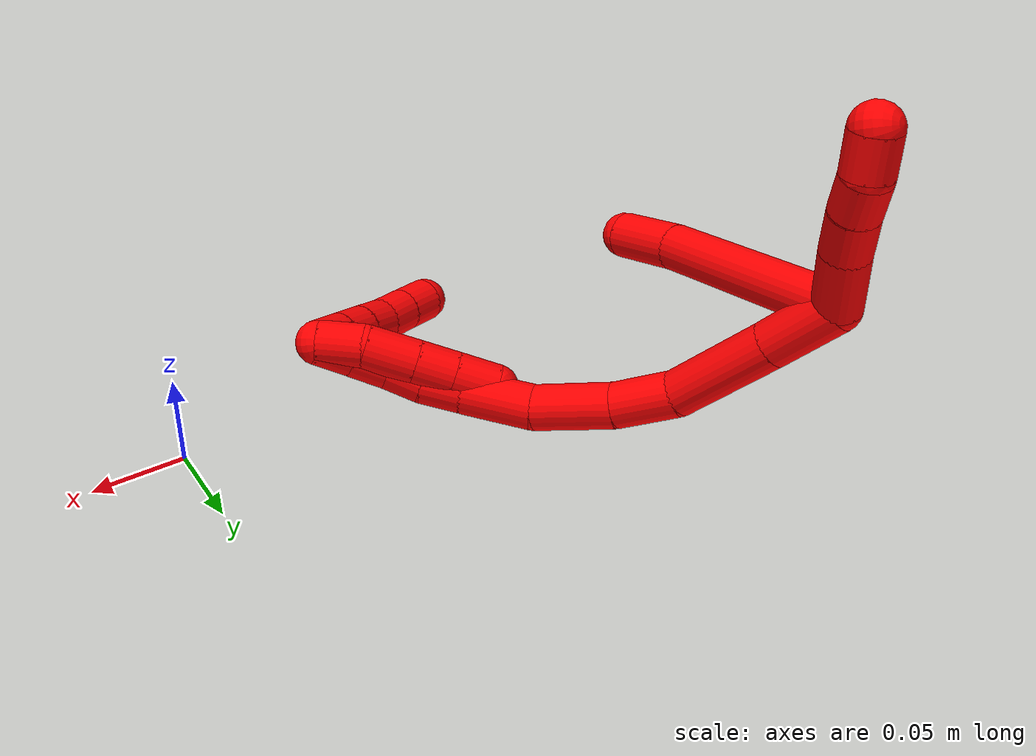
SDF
<sdf version="1.7">
 <world name="default">
  <model name="2">
   <static>0</static>
   <link name="2">
    <collision name="collision-cylinder-e_1_2_8">
     <pose>0.004361 -0.021381 -0.052006 2.75153 0.077409 0.387148</pose>
     <geometry><cylinder><radius>0.0125</radius><length>0.112796</length></cylinder></geometry>
     <surface>
      <friction><ode><mu>1.16</mu><mu2>1.16</mu2><slip1>0</slip1><slip2>0</slip2></ode></friction>
      <contact><ode><kp>1e+06</kp><kd>1</kd><max_vel>0</max_vel><min_depth>0.001</min_depth></ode></contact>
     </surface>
    </collision>
    <visual name="visual-cylinder-e_1_2_8">
     <pose>0.004361 -0.021381 -0.052006 2.75153 0.077409 0.387148</pose>
     <geometry><cylinder><radius>0.0125</radius><length>0.112796</length></cylinder></geometry>
     <material><ambient>1 0 0 1</ambient></material>
    </visual>
    <collision name="collision-cylinder-e_2_8_6">
     <pose>0.010558 -0.047526 -0.121899 2.88131 0.098828 0.722539</pose>
     <geometry><cylinder><radius>0.0125</radius><length>0.037204</length></cylinder></geometry>
     <surface>
      <friction><ode><mu>1.16</mu><mu2>1.16</mu2><slip1>0</slip1><slip2>0</slip2></ode></friction>
      <contact><ode><kp>1e+06</kp><kd>1</kd><max_vel>0</max_vel><min_depth>0.001</min_depth></ode></contact>
     </surface>
    </collision>
    <visual name="visual-cylinder-e_2_8_6">
     <pose>0.010558 -0.047526 -0.121899 2.88131 0.098828 0.722539</pose>
     <geometry><cylinder><radius>0.0125</radius><length>0.037204</length></cylinder></geometry>
     <material><ambient>1 0 0 1</ambient></material>
    </visual>
    <collision name="collision-cylinder-e_1_2_9">
     <pose>0.015246 -0.002089 0.006876 0.294984 1.1303 0.187876</pose>
     <geometry><cylinder><radius>0.0125</radius><length>0.033711</length></cylinder></geometry>
     <surface>
      <friction><ode><mu>1.16</mu><mu2>1.16</mu2><slip1>0</slip1><slip2>0</slip2></ode></friction>
      <contact><ode><kp>1e+06</kp><kd>1</kd><max_vel>0</max_vel><min_depth>0.001</min_depth></ode></contact>
     </surface>
    </collision>
    <visual name="visual-cylinder-e_1_2_9">
     <pose>0.015246 -0.002089 0.006876 0.294984 1.1303 0.187876</pose>
     <geometry><cylinder><radius>0.0125</radius><length>0.033711</length></cylinder></geometry>
     <material><ambient>1 0 0 1</ambient></material>
    </visual>
    <collision name="collision-cylinder-e_2_9_10">
     <pose>0.041023 -0.004799 0.01935 0.110389 1.07975 0.066195</pose>
     <geometry><cylinder><radius>0.0125</radius><length>0.023884</length></cylinder></geometry>
     <surface>
      <friction><ode><mu>1.16</mu><mu2>1.16</mu2><slip1>0</slip1><slip2>0</slip2></ode></friction>
      <contact><ode><kp>1e+06</kp><kd>1</kd><max_vel>0</max_vel><min_depth>0.001</min_depth></ode></contact>
     </surface>
    </collision>
    <visual name="visual-cylinder-e_2_9_10">
     <pose>0.041023 -0.004799 0.01935 0.110389 1.07975 0.066195</pose>
     <geometry><cylinder><radius>0.0125</radius><length>0.023884</length></cylinder></geometry>
     <material><ambient>1 0 0 1</ambient></material>
    </visual>
    <collision name="collision-cylinder-e_3_10_11">
     <pose>0.06033 -0.006388 0.030414 0.175394 1.00669 0.096753</pose>
     <geometry><cylinder><radius>0.0125</radius><length>0.020769</length></cylinder></geometry>
     <surface>
      <friction><ode><mu>1.16</mu><mu2>1.16</mu2><slip1>0</slip1><slip2>0</slip2></ode></friction>
      <contact><ode><kp>1e+06</kp><kd>1</kd><max_vel>0</max_vel><min_depth>0.001</min_depth></ode></contact>
     </surface>
    </collision>
    <visual name="visual-cylinder-e_3_10_11">
     <pose>0.06033 -0.006388 0.030414 0.175394 1.00669 0.096753</pose>
     <geometry><cylinder><radius>0.0125</radius><length>0.020769</length></cylinder></geometry>
     <material><ambient>1 0 0 1</ambient></material>
    </visual>
    <collision name="collision-cylinder-e_4_11_5">
     <pose>0.078482 -0.010985 0.039876 0.737313 1.04853 0.439551</pose>
     <geometry><cylinder><radius>0.0125</radius><length>0.021636</length></cylinder></geometry>
     <surface>
      <friction><ode><mu>1.16</mu><mu2>1.16</mu2><slip1>0</slip1><slip2>0</slip2></ode></friction>
      <contact><ode><kp>1e+06</kp><kd>1</kd><max_vel>0</max_vel><min_depth>0.001</min_depth></ode></contact>
     </surface>
    </collision>
    <visual name="visual-cylinder-e_4_11_5">
     <pose>0.078482 -0.010985 0.039876 0.737313 1.04853 0.439551</pose>
     <geometry><cylinder><radius>0.0125</radius><length>0.021636</length></cylinder></geometry>
     <material><ambient>1 0 0 1</ambient></material>
    </visual>
    <collision name="collision-cylinder-e_1_2_12">
     <pose>-0.006086 0.005912 -0.017508 -2.81593 -0.318137 1.54702</pose>
     <geometry><cylinder><radius>0.0125</radius><length>0.03891</length></cylinder></geometry>
     <surface>
      <friction><ode><mu>1.16</mu><mu2>1.16</mu2><slip1>0</slip1><slip2>0</slip2></ode></friction>
      <contact><ode><kp>1e+06</kp><kd>1</kd><max_vel>0</max_vel><min_depth>0.001</min_depth></ode></contact>
     </surface>
    </collision>
    <visual name="visual-cylinder-e_1_2_12">
     <pose>-0.006086 0.005912 -0.017508 -2.81593 -0.318137 1.54702</pose>
     <geometry><cylinder><radius>0.0125</radius><length>0.03891</length></cylinder></geometry>
     <material><ambient>1 0 0 1</ambient></material>
    </visual>
    <collision name="collision-cylinder-e_2_12_13">
     <pose>-0.020363 0.021116 -0.061351 -2.80239 -0.285323 1.39589</pose>
     <geometry><cylinder><radius>0.0125</radius><length>0.058208</length></cylinder></geometry>
     <surface>
      <friction><ode><mu>1.16</mu><mu2>1.16</mu2><slip1>0</slip1><slip2>0</slip2></ode></friction>
      <contact><ode><kp>1e+06</kp><kd>1</kd><max_vel>0</max_vel><min_depth>0.001</min_depth></ode></contact>
     </surface>
    </collision>
    <visual name="visual-cylinder-e_2_12_13">
     <pose>-0.020363 0.021116 -0.061351 -2.80239 -0.285323 1.39589</pose>
     <geometry><cylinder><radius>0.0125</radius><length>0.058208</length></cylinder></geometry>
     <material><ambient>1 0 0 1</ambient></material>
    </visual>
    <collision name="collision-cylinder-e_3_13_14">
     <pose>-0.027715 0.035933 -0.103881 -2.81285 0.049046 -0.293624</pose>
     <geometry><cylinder><radius>0.0125</radius><length>0.034261</length></cylinder></geometry>
     <surface>
      <friction><ode><mu>1.16</mu><mu2>1.16</mu2><slip1>0</slip1><slip2>0</slip2></ode></friction>
      <contact><ode><kp>1e+06</kp><kd>1</kd><max_vel>0</max_vel><min_depth>0.001</min_depth></ode></contact>
     </surface>
    </collision>
    <visual name="visual-cylinder-e_3_13_14">
     <pose>-0.027715 0.035933 -0.103881 -2.81285 0.049046 -0.293624</pose>
     <geometry><cylinder><radius>0.0125</radius><length>0.034261</length></cylinder></geometry>
     <material><ambient>1 0 0 1</ambient></material>
    </visual>
    <collision name="collision-cylinder-e_4_14_15">
     <pose>-0.021477 0.047975 -0.140484 -2.83247 0.246793 -1.34463</pose>
     <geometry><cylinder><radius>0.0125</radius><length>0.044189</length></cylinder></geometry>
     <surface>
      <friction><ode><mu>1.16</mu><mu2>1.16</mu2><slip1>0</slip1><slip2>0</slip2></ode></friction>
      <contact><ode><kp>1e+06</kp><kd>1</kd><max_vel>0</max_vel><min_depth>0.001</min_depth></ode></contact>
     </surface>
    </collision>
    <visual name="visual-cylinder-e_4_14_15">
     <pose>-0.021477 0.047975 -0.140484 -2.83247 0.246793 -1.34463</pose>
     <geometry><cylinder><radius>0.0125</radius><length>0.044189</length></cylinder></geometry>
     <material><ambient>1 0 0 1</ambient></material>
    </visual>
    <collision name="collision-cylinder-e_5_15_16">
     <pose>-0.006848 0.057772 -0.178195 -2.95426 0.482853 -2.41266</pose>
     <geometry><cylinder><radius>0.0125</radius><length>0.039767</length></cylinder></geometry>
     <surface>
      <friction><ode><mu>1.16</mu><mu2>1.16</mu2><slip1>0</slip1><slip2>0</slip2></ode></friction>
      <contact><ode><kp>1e+06</kp><kd>1</kd><max_vel>0</max_vel><min_depth>0.001</min_depth></ode></contact>
     </surface>
    </collision>
    <visual name="visual-cylinder-e_5_15_16">
     <pose>-0.006848 0.057772 -0.178195 -2.95426 0.482853 -2.41266</pose>
     <geometry><cylinder><radius>0.0125</radius><length>0.039767</length></cylinder></geometry>
     <material><ambient>1 0 0 1</ambient></material>
    </visual>
    <collision name="collision-cylinder-e_6_16_17">
     <pose>0.008898 0.06368 -0.204594 -2.86036 0.60259 -2.28676</pose>
     <geometry><cylinder><radius>0.0125</radius><length>0.022985</length></cylinder></geometry>
     <surface>
      <friction><ode><mu>1.16</mu><mu2>1.16</mu2><slip1>0</slip1><slip2>0</slip2></ode></friction>
      <contact><ode><kp>1e+06</kp><kd>1</kd><max_vel>0</max_vel><min_depth>0.001</min_depth></ode></contact>
     </surface>
    </collision>
    <visual name="visual-cylinder-e_6_16_17">
     <pose>0.008898 0.06368 -0.204594 -2.86036 0.60259 -2.28676</pose>
     <geometry><cylinder><radius>0.0125</radius><length>0.022985</length></cylinder></geometry>
     <material><ambient>1 0 0 1</ambient></material>
    </visual>
    <collision name="collision-cylinder-e_7_17_18">
     <pose>0.022545 0.067891 -0.220863 -2.92436 0.770791 -2.61642</pose>
     <geometry><cylinder><radius>0.0125</radius><length>0.020478</length></cylinder></geometry>
     <surface>
      <friction><ode><mu>1.16</mu><mu2>1.16</mu2><slip1>0</slip1><slip2>0</slip2></ode></friction>
      <contact><ode><kp>1e+06</kp><kd>1</kd><max_vel>0</max_vel><min_depth>0.001</min_depth></ode></contact>
     </surface>
    </collision>
    <visual name="visual-cylinder-e_7_17_18">
     <pose>0.022545 0.067891 -0.220863 -2.92436 0.770791 -2.61642</pose>
     <geometry><cylinder><radius>0.0125</radius><length>0.020478</length></cylinder></geometry>
     <material><ambient>1 0 0 1</ambient></material>
    </visual>
    <collision name="collision-cylinder-e_8_18_19">
     <pose>0.037718 0.072709 -0.233707 -2.62317 0.888621 -2.12514</pose>
     <geometry><cylinder><radius>0.0125</radius><length>0.020714</length></cylinder></geometry>
     <surface>
      <friction><ode><mu>1.16</mu><mu2>1.16</mu2><slip1>0</slip1><slip2>0</slip2></ode></friction>
      <contact><ode><kp>1e+06</kp><kd>1</kd><max_vel>0</max_vel><min_depth>0.001</min_depth></ode></contact>
     </surface>
    </collision>
    <visual name="visual-cylinder-e_8_18_19">
     <pose>0.037718 0.072709 -0.233707 -2.62317 0.888621 -2.12514</pose>
     <geometry><cylinder><radius>0.0125</radius><length>0.020714</length></cylinder></geometry>
     <material><ambient>1 0 0 1</ambient></material>
    </visual>
    <collision name="collision-cylinder-e_9_19_1">
     <pose>0.05363 0.079166 -0.245087 -2.62783 0.876557 -2.11989</pose>
     <geometry><cylinder><radius>0.0125</radius><length>0.020488</length></cylinder></geometry>
     <surface>
      <friction><ode><mu>1.16</mu><mu2>1.16</mu2><slip1>0</slip1><slip2>0</slip2></ode></friction>
      <contact><ode><kp>1e+06</kp><kd>1</kd><max_vel>0</max_vel><min_depth>0.001</min_depth></ode></contact>
     </surface>
    </collision>
    <visual name="visual-cylinder-e_9_19_1">
     <pose>0.05363 0.079166 -0.245087 -2.62783 0.876557 -2.11989</pose>
     <geometry><cylinder><radius>0.0125</radius><length>0.020488</length></cylinder></geometry>
     <material><ambient>1 0 0 1</ambient></material>
    </visual>
    <collision name="collision-cylinder-e_1_1_20">
     <pose>0.056339 0.07402 -0.252616 1.78511 -0.542634 -0.66485</pose>
     <geometry><cylinder><radius>0.0125</radius><length>0.02</length></cylinder></geometry>
     <surface>
      <friction><ode><mu>1.16</mu><mu2>1.16</mu2><slip1>0</slip1><slip2>0</slip2></ode></friction>
      <contact><ode><kp>1e+06</kp><kd>1</kd><max_vel>0</max_vel><min_depth>0.001</min_depth></ode></contact>
     </surface>
    </collision>
    <visual name="visual-cylinder-e_1_1_20">
     <pose>0.056339 0.07402 -0.252616 1.78511 -0.542634 -0.66485</pose>
     <geometry><cylinder><radius>0.0125</radius><length>0.02</length></cylinder></geometry>
     <material><ambient>1 0 0 1</ambient></material>
    </visual>
    <collision name="collision-cylinder-e_2_20_21">
     <pose>0.04603 0.057239 -0.256093 1.76503 -0.540464 -0.649745</pose>
     <geometry><cylinder><radius>0.0125</radius><length>0.02</length></cylinder></geometry>
     <surface>
      <friction><ode><mu>1.16</mu><mu2>1.16</mu2><slip1>0</slip1><slip2>0</slip2></ode></friction>
      <contact><ode><kp>1e+06</kp><kd>1</kd><max_vel>0</max_vel><min_depth>0.001</min_depth></ode></contact>
     </surface>
    </collision>
    <visual name="visual-cylinder-e_2_20_21">
     <pose>0.04603 0.057239 -0.256093 1.76503 -0.540464 -0.649745</pose>
     <geometry><cylinder><radius>0.0125</radius><length>0.02</length></cylinder></geometry>
     <material><ambient>1 0 0 1</ambient></material>
    </visual>
    <collision name="collision-cylinder-e_3_21_22">
     <pose>0.035654 0.040467 -0.259416 1.76786 -0.550424 -0.663226</pose>
     <geometry><cylinder><radius>0.0125</radius><length>0.02</length></cylinder></geometry>
     <surface>
      <friction><ode><mu>1.16</mu><mu2>1.16</mu2><slip1>0</slip1><slip2>0</slip2></ode></friction>
      <contact><ode><kp>1e+06</kp><kd>1</kd><max_vel>0</max_vel><min_depth>0.001</min_depth></ode></contact>
     </surface>
    </collision>
    <visual name="visual-cylinder-e_3_21_22">
     <pose>0.035654 0.040467 -0.259416 1.76786 -0.550424 -0.663226</pose>
     <geometry><cylinder><radius>0.0125</radius><length>0.02</length></cylinder></geometry>
     <material><ambient>1 0 0 1</ambient></material>
    </visual>
    <collision name="collision-cylinder-e_4_22_23">
     <pose>0.026166 0.023079 -0.261663 1.63469 -0.43977 -0.467789</pose>
     <geometry><cylinder><radius>0.0125</radius><length>0.02</length></cylinder></geometry>
     <surface>
      <friction><ode><mu>1.16</mu><mu2>1.16</mu2><slip1>0</slip1><slip2>0</slip2></ode></friction>
      <contact><ode><kp>1e+06</kp><kd>1</kd><max_vel>0</max_vel><min_depth>0.001</min_depth></ode></contact>
     </surface>
    </collision>
    <visual name="visual-cylinder-e_4_22_23">
     <pose>0.026166 0.023079 -0.261663 1.63469 -0.43977 -0.467789</pose>
     <geometry><cylinder><radius>0.0125</radius><length>0.02</length></cylinder></geometry>
     <material><ambient>1 0 0 1</ambient></material>
    </visual>
    <collision name="collision-cylinder-e_5_23_4">
     <pose>0.01767 0.004994 -0.262419 1.59051 -0.437766 -0.446197</pose>
     <geometry><cylinder><radius>0.0125</radius><length>0.02</length></cylinder></geometry>
     <surface>
      <friction><ode><mu>1.16</mu><mu2>1.16</mu2><slip1>0</slip1><slip2>0</slip2></ode></friction>
      <contact><ode><kp>1e+06</kp><kd>1</kd><max_vel>0</max_vel><min_depth>0.001</min_depth></ode></contact>
     </surface>
    </collision>
    <visual name="visual-cylinder-e_5_23_4">
     <pose>0.01767 0.004994 -0.262419 1.59051 -0.437766 -0.446197</pose>
     <geometry><cylinder><radius>0.0125</radius><length>0.02</length></cylinder></geometry>
     <material><ambient>1 0 0 1</ambient></material>
    </visual>
    <collision name="collision-cylinder-e_1_1_24">
     <pose>0.05522 0.07774 -0.240725 0.432359 -0.515431 -0.11564</pose>
     <geometry><cylinder><radius>0.0125</radius><length>0.025493</length></cylinder></geometry>
     <surface>
      <friction><ode><mu>1.16</mu><mu2>1.16</mu2><slip1>0</slip1><slip2>0</slip2></ode></friction>
      <contact><ode><kp>1e+06</kp><kd>1</kd><max_vel>0</max_vel><min_depth>0.001</min_depth></ode></contact>
     </surface>
    </collision>
    <visual name="visual-cylinder-e_1_1_24">
     <pose>0.05522 0.07774 -0.240725 0.432359 -0.515431 -0.11564</pose>
     <geometry><cylinder><radius>0.0125</radius><length>0.025493</length></cylinder></geometry>
     <material><ambient>1 0 0 1</ambient></material>
    </visual>
    <collision name="collision-cylinder-e_2_24_25">
     <pose>0.038825 0.068882 -0.221276 0.42202 -0.777117 -0.174926</pose>
     <geometry><cylinder><radius>0.0125</radius><length>0.02884</length></cylinder></geometry>
     <surface>
      <friction><ode><mu>1.16</mu><mu2>1.16</mu2><slip1>0</slip1><slip2>0</slip2></ode></friction>
      <contact><ode><kp>1e+06</kp><kd>1</kd><max_vel>0</max_vel><min_depth>0.001</min_depth></ode></contact>
     </surface>
    </collision>
    <visual name="visual-cylinder-e_2_24_25">
     <pose>0.038825 0.068882 -0.221276 0.42202 -0.777117 -0.174926</pose>
     <geometry><cylinder><radius>0.0125</radius><length>0.02884</length></cylinder></geometry>
     <material><ambient>1 0 0 1</ambient></material>
    </visual>
    <collision name="collision-cylinder-e_3_25_26">
     <pose>0.020988 0.061494 -0.204758 0.41863 -0.779687 -0.174119</pose>
     <geometry><cylinder><radius>0.0125</radius><length>0.021979</length></cylinder></geometry>
     <surface>
      <friction><ode><mu>1.16</mu><mu2>1.16</mu2><slip1>0</slip1><slip2>0</slip2></ode></friction>
      <contact><ode><kp>1e+06</kp><kd>1</kd><max_vel>0</max_vel><min_depth>0.001</min_depth></ode></contact>
     </surface>
    </collision>
    <visual name="visual-cylinder-e_3_25_26">
     <pose>0.020988 0.061494 -0.204758 0.41863 -0.779687 -0.174119</pose>
     <geometry><cylinder><radius>0.0125</radius><length>0.021979</length></cylinder></geometry>
     <material><ambient>1 0 0 1</ambient></material>
    </visual>
    <collision name="collision-cylinder-e_4_26_3">
     <pose>0.00493 0.054957 -0.189899 0.410632 -0.78017 -0.17083</pose>
     <geometry><cylinder><radius>0.0125</radius><length>0.023688</length></cylinder></geometry>
     <surface>
      <friction><ode><mu>1.16</mu><mu2>1.16</mu2><slip1>0</slip1><slip2>0</slip2></ode></friction>
      <contact><ode><kp>1e+06</kp><kd>1</kd><max_vel>0</max_vel><min_depth>0.001</min_depth></ode></contact>
     </surface>
    </collision>
    <visual name="visual-cylinder-e_4_26_3">
     <pose>0.00493 0.054957 -0.189899 0.410632 -0.78017 -0.17083</pose>
     <geometry><cylinder><radius>0.0125</radius><length>0.023688</length></cylinder></geometry>
     <material><ambient>1 0 0 1</ambient></material>
    </visual>
    <collision name="collision-sphere-3">
     <pose>-0.003401 0.051596 -0.18218 0 -0 0</pose>
     <geometry><sphere><radius>0.0125</radius></sphere></geometry>
     <surface>
      <friction><ode><mu>1.16</mu><mu2>1.16</mu2><slip1>0</slip1><slip2>0</slip2></ode></friction>
      <contact><ode><kp>1e+06</kp><kd>1</kd><max_vel>0</max_vel><min_depth>0.001</min_depth></ode></contact>
     </surface>
    </collision>
    <visual name="visual-sphere-3">
     <pose>-0.003401 0.051596 -0.18218 0 -0 0</pose>
     <geometry><sphere><radius>0.0125</radius></sphere></geometry>
     <material><ambient>1 0 0 1</ambient></material>
    </visual>
    <collision name="collision-sphere-26">
     <pose>0.013261 0.058317 -0.197618 0 -0 0</pose>
     <geometry><sphere><radius>0.0125</radius></sphere></geometry>
     <surface>
      <friction><ode><mu>1.16</mu><mu2>1.16</mu2><slip1>0</slip1><slip2>0</slip2></ode></friction>
      <contact><ode><kp>1e+06</kp><kd>1</kd><max_vel>0</max_vel><min_depth>0.001</min_depth></ode></contact>
     </surface>
    </collision>
    <visual name="visual-sphere-26">
     <pose>0.013261 0.058317 -0.197618 0 -0 0</pose>
     <geometry><sphere><radius>0.0125</radius></sphere></geometry>
     <material><ambient>1 0 0 1</ambient></material>
    </visual>
    <collision name="collision-sphere-25">
     <pose>0.028714 0.064671 -0.211898 0 -0 0</pose>
     <geometry><sphere><radius>0.0125</radius></sphere></geometry>
     <surface>
      <friction><ode><mu>1.16</mu><mu2>1.16</mu2><slip1>0</slip1><slip2>0</slip2></ode></friction>
      <contact><ode><kp>1e+06</kp><kd>1</kd><max_vel>0</max_vel><min_depth>0.001</min_depth></ode></contact>
     </surface>
    </collision>
    <visual name="visual-sphere-25">
     <pose>0.028714 0.064671 -0.211898 0 -0 0</pose>
     <geometry><sphere><radius>0.0125</radius></sphere></geometry>
     <material><ambient>1 0 0 1</ambient></material>
    </visual>
    <collision name="collision-sphere-24">
     <pose>0.048937 0.073093 -0.230655 0 -0 0</pose>
     <geometry><sphere><radius>0.0125</radius></sphere></geometry>
     <surface>
      <friction><ode><mu>1.16</mu><mu2>1.16</mu2><slip1>0</slip1><slip2>0</slip2></ode></friction>
      <contact><ode><kp>1e+06</kp><kd>1</kd><max_vel>0</max_vel><min_depth>0.001</min_depth></ode></contact>
     </surface>
    </collision>
    <visual name="visual-sphere-24">
     <pose>0.048937 0.073093 -0.230655 0 -0 0</pose>
     <geometry><sphere><radius>0.0125</radius></sphere></geometry>
     <material><ambient>1 0 0 1</ambient></material>
    </visual>
    <collision name="collision-sphere-4">
     <pose>0.013431 -0.004062 -0.262598 0 -0 0</pose>
     <geometry><sphere><radius>0.0125</radius></sphere></geometry>
     <surface>
      <friction><ode><mu>1.16</mu><mu2>1.16</mu2><slip1>0</slip1><slip2>0</slip2></ode></friction>
      <contact><ode><kp>1e+06</kp><kd>1</kd><max_vel>0</max_vel><min_depth>0.001</min_depth></ode></contact>
     </surface>
    </collision>
    <visual name="visual-sphere-4">
     <pose>0.013431 -0.004062 -0.262598 0 -0 0</pose>
     <geometry><sphere><radius>0.0125</radius></sphere></geometry>
     <material><ambient>1 0 0 1</ambient></material>
    </visual>
    <collision name="collision-sphere-23">
     <pose>0.021909 0.014049 -0.262241 0 -0 0</pose>
     <geometry><sphere><radius>0.0125</radius></sphere></geometry>
     <surface>
      <friction><ode><mu>1.16</mu><mu2>1.16</mu2><slip1>0</slip1><slip2>0</slip2></ode></friction>
      <contact><ode><kp>1e+06</kp><kd>1</kd><max_vel>0</max_vel><min_depth>0.001</min_depth></ode></contact>
     </surface>
    </collision>
    <visual name="visual-sphere-23">
     <pose>0.021909 0.014049 -0.262241 0 -0 0</pose>
     <geometry><sphere><radius>0.0125</radius></sphere></geometry>
     <material><ambient>1 0 0 1</ambient></material>
    </visual>
    <collision name="collision-sphere-22">
     <pose>0.030424 0.032109 -0.261085 0 -0 0</pose>
     <geometry><sphere><radius>0.0125</radius></sphere></geometry>
     <surface>
      <friction><ode><mu>1.16</mu><mu2>1.16</mu2><slip1>0</slip1><slip2>0</slip2></ode></friction>
      <contact><ode><kp>1e+06</kp><kd>1</kd><max_vel>0</max_vel><min_depth>0.001</min_depth></ode></contact>
     </surface>
    </collision>
    <visual name="visual-sphere-22">
     <pose>0.030424 0.032109 -0.261085 0 -0 0</pose>
     <geometry><sphere><radius>0.0125</radius></sphere></geometry>
     <material><ambient>1 0 0 1</ambient></material>
    </visual>
    <collision name="collision-sphere-21">
     <pose>0.040884 0.048825 -0.257748 0 -0 0</pose>
     <geometry><sphere><radius>0.0125</radius></sphere></geometry>
     <surface>
      <friction><ode><mu>1.16</mu><mu2>1.16</mu2><slip1>0</slip1><slip2>0</slip2></ode></friction>
      <contact><ode><kp>1e+06</kp><kd>1</kd><max_vel>0</max_vel><min_depth>0.001</min_depth></ode></contact>
     </surface>
    </collision>
    <visual name="visual-sphere-21">
     <pose>0.040884 0.048825 -0.257748 0 -0 0</pose>
     <geometry><sphere><radius>0.0125</radius></sphere></geometry>
     <material><ambient>1 0 0 1</ambient></material>
    </visual>
    <collision name="collision-sphere-20">
     <pose>0.051175 0.065652 -0.254438 0 -0 0</pose>
     <geometry><sphere><radius>0.0125</radius></sphere></geometry>
     <surface>
      <friction><ode><mu>1.16</mu><mu2>1.16</mu2><slip1>0</slip1><slip2>0</slip2></ode></friction>
      <contact><ode><kp>1e+06</kp><kd>1</kd><max_vel>0</max_vel><min_depth>0.001</min_depth></ode></contact>
     </surface>
    </collision>
    <visual name="visual-sphere-20">
     <pose>0.051175 0.065652 -0.254438 0 -0 0</pose>
     <geometry><sphere><radius>0.0125</radius></sphere></geometry>
     <material><ambient>1 0 0 1</ambient></material>
    </visual>
    <collision name="collision-sphere-11">
     <pose>0.069106 -0.007357 0.035881 0 -0 0</pose>
     <geometry><sphere><radius>0.0125</radius></sphere></geometry>
     <surface>
      <friction><ode><mu>1.16</mu><mu2>1.16</mu2><slip1>0</slip1><slip2>0</slip2></ode></friction>
      <contact><ode><kp>1e+06</kp><kd>1</kd><max_vel>0</max_vel><min_depth>0.001</min_depth></ode></contact>
     </surface>
    </collision>
    <visual name="visual-sphere-11">
     <pose>0.069106 -0.007357 0.035881 0 -0 0</pose>
     <geometry><sphere><radius>0.0125</radius></sphere></geometry>
     <material><ambient>1 0 0 1</ambient></material>
    </visual>
    <collision name="collision-sphere-10">
     <pose>0.051554 -0.00542 0.024947 0 -0 0</pose>
     <geometry><sphere><radius>0.0125</radius></sphere></geometry>
     <surface>
      <friction><ode><mu>1.16</mu><mu2>1.16</mu2><slip1>0</slip1><slip2>0</slip2></ode></friction>
      <contact><ode><kp>1e+06</kp><kd>1</kd><max_vel>0</max_vel><min_depth>0.001</min_depth></ode></contact>
     </surface>
    </collision>
    <visual name="visual-sphere-10">
     <pose>0.051554 -0.00542 0.024947 0 -0 0</pose>
     <geometry><sphere><radius>0.0125</radius></sphere></geometry>
     <material><ambient>1 0 0 1</ambient></material>
    </visual>
    <collision name="collision-sphere-6">
     <pose>0.012393 -0.05229 -0.139786 0 -0 0</pose>
     <geometry><sphere><radius>0.0125</radius></sphere></geometry>
     <surface>
      <friction><ode><mu>1.16</mu><mu2>1.16</mu2><slip1>0</slip1><slip2>0</slip2></ode></friction>
      <contact><ode><kp>1e+06</kp><kd>1</kd><max_vel>0</max_vel><min_depth>0.001</min_depth></ode></contact>
     </surface>
    </collision>
    <visual name="visual-sphere-6">
     <pose>0.012393 -0.05229 -0.139786 0 -0 0</pose>
     <geometry><sphere><radius>0.0125</radius></sphere></geometry>
     <material><ambient>1 0 0 1</ambient></material>
    </visual>
    <collision name="collision-sphere-9">
     <pose>0.030492 -0.004179 0.013753 0 -0 0</pose>
     <geometry><sphere><radius>0.0125</radius></sphere></geometry>
     <surface>
      <friction><ode><mu>1.16</mu><mu2>1.16</mu2><slip1>0</slip1><slip2>0</slip2></ode></friction>
      <contact><ode><kp>1e+06</kp><kd>1</kd><max_vel>0</max_vel><min_depth>0.001</min_depth></ode></contact>
     </surface>
    </collision>
    <visual name="visual-sphere-9">
     <pose>0.030492 -0.004179 0.013753 0 -0 0</pose>
     <geometry><sphere><radius>0.0125</radius></sphere></geometry>
     <material><ambient>1 0 0 1</ambient></material>
    </visual>
    <collision name="collision-sphere-2">
     <geometry><sphere><radius>0.0125</radius></sphere></geometry>
     <surface>
      <friction><ode><mu>1.16</mu><mu2>1.16</mu2><slip1>0</slip1><slip2>0</slip2></ode></friction>
      <contact><ode><kp>1e+06</kp><kd>1</kd><max_vel>0</max_vel><min_depth>0.001</min_depth></ode></contact>
     </surface>
    </collision>
    <visual name="visual-sphere-2">
     <geometry><sphere><radius>0.0125</radius></sphere></geometry>
     <material><ambient>1 0 0 1</ambient></material>
    </visual>
    <collision name="collision-sphere-19">
     <pose>0.045757 0.075945 -0.239379 0 -0 0</pose>
     <geometry><sphere><radius>0.0125</radius></sphere></geometry>
     <surface>
      <friction><ode><mu>1.16</mu><mu2>1.16</mu2><slip1>0</slip1><slip2>0</slip2></ode></friction>
      <contact><ode><kp>1e+06</kp><kd>1</kd><max_vel>0</max_vel><min_depth>0.001</min_depth></ode></contact>
     </surface>
    </collision>
    <visual name="visual-sphere-19">
     <pose>0.045757 0.075945 -0.239379 0 -0 0</pose>
     <geometry><sphere><radius>0.0125</radius></sphere></geometry>
     <material><ambient>1 0 0 1</ambient></material>
    </visual>
    <collision name="collision-sphere-8">
     <pose>0.008723 -0.042762 -0.104011 0 -0 0</pose>
     <geometry><sphere><radius>0.0125</radius></sphere></geometry>
     <surface>
      <friction><ode><mu>1.16</mu><mu2>1.16</mu2><slip1>0</slip1><slip2>0</slip2></ode></friction>
      <contact><ode><kp>1e+06</kp><kd>1</kd><max_vel>0</max_vel><min_depth>0.001</min_depth></ode></contact>
     </surface>
    </collision>
    <visual name="visual-sphere-8">
     <pose>0.008723 -0.042762 -0.104011 0 -0 0</pose>
     <geometry><sphere><radius>0.0125</radius></sphere></geometry>
     <material><ambient>1 0 0 1</ambient></material>
    </visual>
    <collision name="collision-sphere-5">
     <pose>0.087858 -0.014614 0.043871 0 -0 0</pose>
     <geometry><sphere><radius>0.0125</radius></sphere></geometry>
     <surface>
      <friction><ode><mu>1.16</mu><mu2>1.16</mu2><slip1>0</slip1><slip2>0</slip2></ode></friction>
      <contact><ode><kp>1e+06</kp><kd>1</kd><max_vel>0</max_vel><min_depth>0.001</min_depth></ode></contact>
     </surface>
    </collision>
    <visual name="visual-sphere-5">
     <pose>0.087858 -0.014614 0.043871 0 -0 0</pose>
     <geometry><sphere><radius>0.0125</radius></sphere></geometry>
     <material><ambient>1 0 0 1</ambient></material>
    </visual>
    <collision name="collision-sphere-12">
     <pose>-0.012171 0.011824 -0.035015 0 -0 0</pose>
     <geometry><sphere><radius>0.0125</radius></sphere></geometry>
     <surface>
      <friction><ode><mu>1.16</mu><mu2>1.16</mu2><slip1>0</slip1><slip2>0</slip2></ode></friction>
      <contact><ode><kp>1e+06</kp><kd>1</kd><max_vel>0</max_vel><min_depth>0.001</min_depth></ode></contact>
     </surface>
    </collision>
    <visual name="visual-sphere-12">
     <pose>-0.012171 0.011824 -0.035015 0 -0 0</pose>
     <geometry><sphere><radius>0.0125</radius></sphere></geometry>
     <material><ambient>1 0 0 1</ambient></material>
    </visual>
    <collision name="collision-sphere-13">
     <pose>-0.028555 0.030409 -0.087687 0 -0 0</pose>
     <geometry><sphere><radius>0.0125</radius></sphere></geometry>
     <surface>
      <friction><ode><mu>1.16</mu><mu2>1.16</mu2><slip1>0</slip1><slip2>0</slip2></ode></friction>
      <contact><ode><kp>1e+06</kp><kd>1</kd><max_vel>0</max_vel><min_depth>0.001</min_depth></ode></contact>
     </surface>
    </collision>
    <visual name="visual-sphere-13">
     <pose>-0.028555 0.030409 -0.087687 0 -0 0</pose>
     <geometry><sphere><radius>0.0125</radius></sphere></geometry>
     <material><ambient>1 0 0 1</ambient></material>
    </visual>
    <collision name="collision-sphere-14">
     <pose>-0.026875 0.041457 -0.120075 0 -0 0</pose>
     <geometry><sphere><radius>0.0125</radius></sphere></geometry>
     <surface>
      <friction><ode><mu>1.16</mu><mu2>1.16</mu2><slip1>0</slip1><slip2>0</slip2></ode></friction>
      <contact><ode><kp>1e+06</kp><kd>1</kd><max_vel>0</max_vel><min_depth>0.001</min_depth></ode></contact>
     </surface>
    </collision>
    <visual name="visual-sphere-14">
     <pose>-0.026875 0.041457 -0.120075 0 -0 0</pose>
     <geometry><sphere><radius>0.0125</radius></sphere></geometry>
     <material><ambient>1 0 0 1</ambient></material>
    </visual>
    <collision name="collision-sphere-15">
     <pose>-0.01608 0.054493 -0.160893 0 -0 0</pose>
     <geometry><sphere><radius>0.0125</radius></sphere></geometry>
     <surface>
      <friction><ode><mu>1.16</mu><mu2>1.16</mu2><slip1>0</slip1><slip2>0</slip2></ode></friction>
      <contact><ode><kp>1e+06</kp><kd>1</kd><max_vel>0</max_vel><min_depth>0.001</min_depth></ode></contact>
     </surface>
    </collision>
    <visual name="visual-sphere-15">
     <pose>-0.01608 0.054493 -0.160893 0 -0 0</pose>
     <geometry><sphere><radius>0.0125</radius></sphere></geometry>
     <material><ambient>1 0 0 1</ambient></material>
    </visual>
    <collision name="collision-sphere-16">
     <pose>0.002384 0.061052 -0.195497 0 -0 0</pose>
     <geometry><sphere><radius>0.0125</radius></sphere></geometry>
     <surface>
      <friction><ode><mu>1.16</mu><mu2>1.16</mu2><slip1>0</slip1><slip2>0</slip2></ode></friction>
      <contact><ode><kp>1e+06</kp><kd>1</kd><max_vel>0</max_vel><min_depth>0.001</min_depth></ode></contact>
     </surface>
    </collision>
    <visual name="visual-sphere-16">
     <pose>0.002384 0.061052 -0.195497 0 -0 0</pose>
     <geometry><sphere><radius>0.0125</radius></sphere></geometry>
     <material><ambient>1 0 0 1</ambient></material>
    </visual>
    <collision name="collision-sphere-17">
     <pose>0.015411 0.066308 -0.21369 0 -0 0</pose>
     <geometry><sphere><radius>0.0125</radius></sphere></geometry>
     <surface>
      <friction><ode><mu>1.16</mu><mu2>1.16</mu2><slip1>0</slip1><slip2>0</slip2></ode></friction>
      <contact><ode><kp>1e+06</kp><kd>1</kd><max_vel>0</max_vel><min_depth>0.001</min_depth></ode></contact>
     </surface>
    </collision>
    <visual name="visual-sphere-17">
     <pose>0.015411 0.066308 -0.21369 0 -0 0</pose>
     <geometry><sphere><radius>0.0125</radius></sphere></geometry>
     <material><ambient>1 0 0 1</ambient></material>
    </visual>
    <collision name="collision-sphere-18">
     <pose>0.029679 0.069474 -0.228035 0 -0 0</pose>
     <geometry><sphere><radius>0.0125</radius></sphere></geometry>
     <surface>
      <friction><ode><mu>1.16</mu><mu2>1.16</mu2><slip1>0</slip1><slip2>0</slip2></ode></friction>
      <contact><ode><kp>1e+06</kp><kd>1</kd><max_vel>0</max_vel><min_depth>0.001</min_depth></ode></contact>
     </surface>
    </collision>
    <visual name="visual-sphere-18">
     <pose>0.029679 0.069474 -0.228035 0 -0 0</pose>
     <geometry><sphere><radius>0.0125</radius></sphere></geometry>
     <material><ambient>1 0 0 1</ambient></material>
    </visual>
    <collision name="collision-sphere-1">
     <pose>0.061503 0.082387 -0.250795 0 -0 0</pose>
     <geometry><sphere><radius>0.0125</radius></sphere></geometry>
     <surface>
      <friction><ode><mu>1.16</mu><mu2>1.16</mu2><slip1>0</slip1><slip2>0</slip2></ode></friction>
      <contact><ode><kp>1e+06</kp><kd>1</kd><max_vel>0</max_vel><min_depth>0.001</min_depth></ode></contact>
     </surface>
    </collision>
    <visual name="visual-sphere-1">
     <pose>0.061503 0.082387 -0.250795 0 -0 0</pose>
     <geometry><sphere><radius>0.0125</radius></sphere></geometry>
     <material><ambient>1 0 0 1</ambient></material>
    </visual>
    <inertial>
     <pose>0.014701 0.025296 -0.12769 0 -0 0</pose>
     <mass>0.75</mass>
     <inertia><ixx>0.000195</ixx><ixy>0</ixy><ixz>0</ixz><iyy>-4e-05</iyy><iyz>0</iyz><izz>9e-06</izz></inertia>
    </inertial>
   </link>
   <pose>-0.266061 0.181438 0.104883 -0.570723 -1.07407 -0.556372</pose>
  </model>
 </world>
</sdf>
